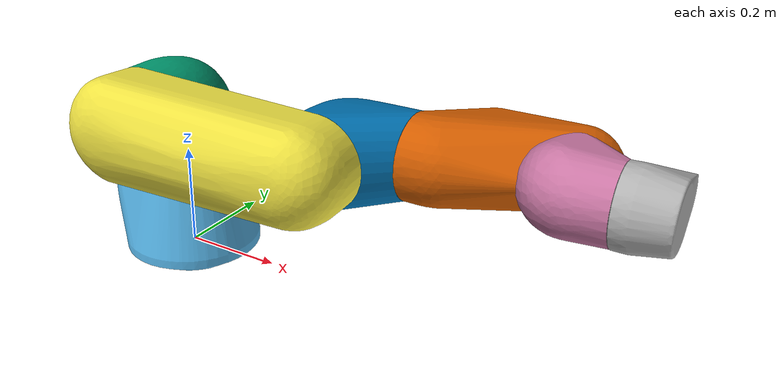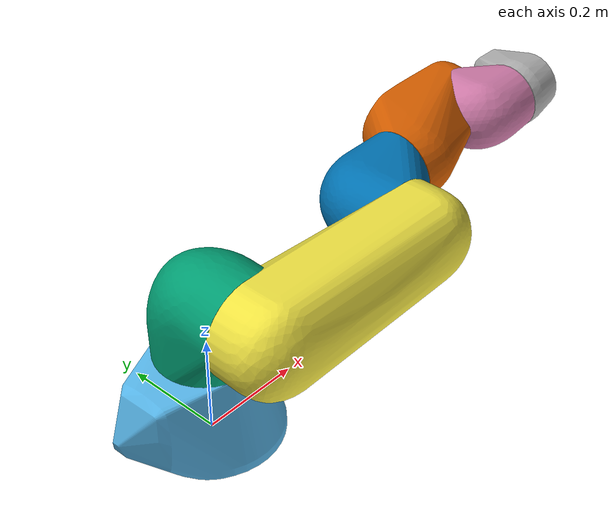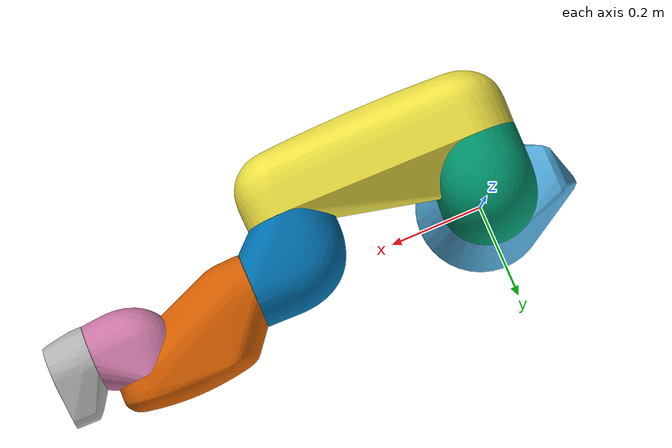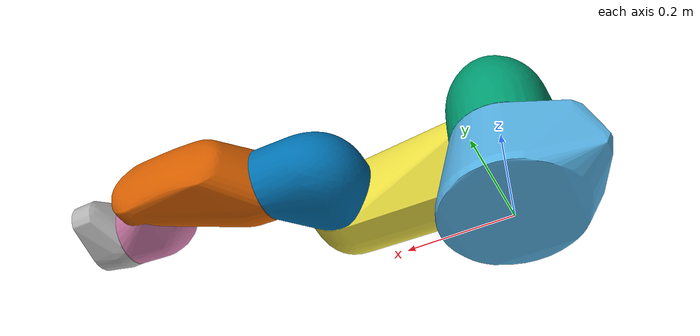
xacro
<?xml version="1.0"?>
<robot xmlns:xacro="http://www.ros.org/wiki/xacro" name="iisy_15_r930">
  <xacro:arg name="prefix" default=""/>
  <xacro:include filename="$(find kuka_robot_descriptions)/urdf/iisy_15_r930_macro.xacro"/>
  <link name="world"/>
  <xacro:iisy_15_r930 prefix="$(arg prefix)" parent="world">
    <origin xyz="0 0 0" rpy="0 0 0"/>
  </xacro:iisy_15_r930>
</robot>

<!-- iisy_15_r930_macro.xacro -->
<robot xmlns:xacro="http://www.ros.org/wiki/xacro">

  <!-- KUKA iisy 15 R930 - generated from RoboDK .robot -->
  <xacro:macro name="iisy_15_r930" params="prefix parent *origin">

    <material name="${prefix}iisy_15_r930_grey"><color rgba="0.85 0.85 0.85 1.0"/></material>

    <joint name="${prefix}base_joint" type="fixed">
      <xacro:insert_block name="origin"/>
      <parent link="${parent}"/>
      <child link="${prefix}base_link"/>
    </joint>

    <link name="${prefix}base_link">
      <visual>
        <origin xyz="0 0 0" rpy="0 0 0"/>
        <geometry>
          <mesh filename="package://kuka_robot_descriptions/meshes/iisy_15_r930/visual/base_link.dae" scale="0.001 0.001 0.001"/>
        </geometry>
      </visual>
      <collision>
        <origin xyz="0 0 0" rpy="0 0 0"/>
        <geometry>
          <mesh filename="package://kuka_robot_descriptions/meshes/iisy_15_r930/collision/base_link.stl" scale="0.001 0.001 0.001"/>
        </geometry>
      </collision>
    </link>

    <link name="${prefix}link_1">
      <visual>
        <origin xyz="0 0 0" rpy="0 0 0"/>
        <geometry>
          <mesh filename="package://kuka_robot_descriptions/meshes/iisy_15_r930/visual/link_1.dae" scale="0.001 0.001 0.001"/>
        </geometry>
      </visual>
      <collision>
        <origin xyz="0 0 0" rpy="0 0 0"/>
        <geometry>
          <mesh filename="package://kuka_robot_descriptions/meshes/iisy_15_r930/collision/link_1.stl" scale="0.001 0.001 0.001"/>
        </geometry>
      </collision>
    </link>

    <link name="${prefix}link_2">
      <visual>
        <origin xyz="0 0 0" rpy="0 0 0"/>
        <geometry>
          <mesh filename="package://kuka_robot_descriptions/meshes/iisy_15_r930/visual/link_2.dae" scale="0.001 0.001 0.001"/>
        </geometry>
      </visual>
      <collision>
        <origin xyz="0 0 0" rpy="0 0 0"/>
        <geometry>
          <mesh filename="package://kuka_robot_descriptions/meshes/iisy_15_r930/collision/link_2.stl" scale="0.001 0.001 0.001"/>
        </geometry>
      </collision>
    </link>

    <link name="${prefix}link_3">
      <visual>
        <origin xyz="0 0 0" rpy="0 0 0"/>
        <geometry>
          <mesh filename="package://kuka_robot_descriptions/meshes/iisy_15_r930/visual/link_3.dae" scale="0.001 0.001 0.001"/>
        </geometry>
      </visual>
      <collision>
        <origin xyz="0 0 0" rpy="0 0 0"/>
        <geometry>
          <mesh filename="package://kuka_robot_descriptions/meshes/iisy_15_r930/collision/link_3.stl" scale="0.001 0.001 0.001"/>
        </geometry>
      </collision>
    </link>

    <link name="${prefix}link_4">
      <visual>
        <origin xyz="0 0 0" rpy="0 0 0"/>
        <geometry>
          <mesh filename="package://kuka_robot_descriptions/meshes/iisy_15_r930/visual/link_4.dae" scale="0.001 0.001 0.001"/>
        </geometry>
      </visual>
      <collision>
        <origin xyz="0 0 0" rpy="0 0 0"/>
        <geometry>
          <mesh filename="package://kuka_robot_descriptions/meshes/iisy_15_r930/collision/link_4.stl" scale="0.001 0.001 0.001"/>
        </geometry>
      </collision>
    </link>

    <link name="${prefix}link_5">
      <visual>
        <origin xyz="0 0 0" rpy="0 0 0"/>
        <geometry>
          <mesh filename="package://kuka_robot_descriptions/meshes/iisy_15_r930/visual/link_5.dae" scale="0.001 0.001 0.001"/>
        </geometry>
      </visual>
      <collision>
        <origin xyz="0 0 0" rpy="0 0 0"/>
        <geometry>
          <mesh filename="package://kuka_robot_descriptions/meshes/iisy_15_r930/collision/link_5.stl" scale="0.001 0.001 0.001"/>
        </geometry>
      </collision>
    </link>

    <link name="${prefix}link_6">
      <visual>
        <origin xyz="0 0 0" rpy="0 0 0"/>
        <geometry>
          <mesh filename="package://kuka_robot_descriptions/meshes/iisy_15_r930/visual/link_6.dae" scale="0.001 0.001 0.001"/>
        </geometry>
      </visual>
      <collision>
        <origin xyz="0 0 0" rpy="0 0 0"/>
        <geometry>
          <mesh filename="package://kuka_robot_descriptions/meshes/iisy_15_r930/collision/link_6.stl" scale="0.001 0.001 0.001"/>
        </geometry>
      </collision>
    </link>

    <joint name="${prefix}joint_1" type="revolute">
      <parent link="${prefix}base_link"/>
      <child link="${prefix}link_1"/>
      <origin xyz="0 0 0.3" rpy="0 -0 0"/>
      <axis xyz="0 0 1"/>
      <limit lower="-3.2288591" upper="3.2288591" effort="100.0" velocity="3.1416"/>
    </joint>

    <joint name="${prefix}joint_2" type="revolute">
      <parent link="${prefix}link_1"/>
      <child link="${prefix}link_2"/>
      <origin xyz="0 0 0" rpy="-1.5707963 -0 0"/>
      <axis xyz="0 0 1"/>
      <limit lower="-4.0142573" upper="0.87266463" effort="100.0" velocity="3.1416"/>
    </joint>

    <joint name="${prefix}joint_3" type="revolute">
      <parent link="${prefix}link_2"/>
      <child link="${prefix}link_3"/>
      <origin xyz="0.385 0 0" rpy="0 -0 -1.5707963"/>
      <axis xyz="0 0 1"/>
      <limit lower="-2.6179939" upper="2.6179939" effort="100.0" velocity="3.1416"/>
    </joint>

    <joint name="${prefix}joint_4" type="revolute">
      <parent link="${prefix}link_3"/>
      <child link="${prefix}link_4"/>
      <origin xyz="5.6843419e-17 0.367 2.2472269e-17" rpy="-1.5707963 -0 0"/>
      <axis xyz="0 0 1"/>
      <limit lower="-3.0543262" upper="3.0543262" effort="100.0" velocity="3.1416"/>
    </joint>

    <joint name="${prefix}joint_5" type="revolute">
      <parent link="${prefix}link_4"/>
      <child link="${prefix}link_5"/>
      <origin xyz="0 0 0" rpy="1.5707963 -0 0"/>
      <axis xyz="0 0 1"/>
      <limit lower="-1.9198622" upper="1.9198622" effort="100.0" velocity="3.1416"/>
    </joint>

    <joint name="${prefix}joint_6" type="revolute">
      <parent link="${prefix}link_5"/>
      <child link="${prefix}link_6"/>
      <origin xyz="0 0.178 1.0899357e-17" rpy="1.5707963 1.2246468e-16 3.1415927"/>
      <axis xyz="0 0 1"/>
      <limit lower="-3.8397244" upper="3.8397244" effort="100.0" velocity="3.1416"/>
    </joint>

    <link name="${prefix}flange"/>
    <joint name="${prefix}link_6-flange" type="fixed">
      <parent link="${prefix}link_6"/>
      <child link="${prefix}flange"/>
      <origin xyz="0 0 0" rpy="0 0 0"/>
    </joint>
    <link name="${prefix}tool0"/>
    <joint name="${prefix}flange-tool0" type="fixed">
      <parent link="${prefix}flange"/>
      <child link="${prefix}tool0"/>
      <origin xyz="0 0 0" rpy="0 0 0"/>
    </joint>

  </xacro:macro>
</robot>
